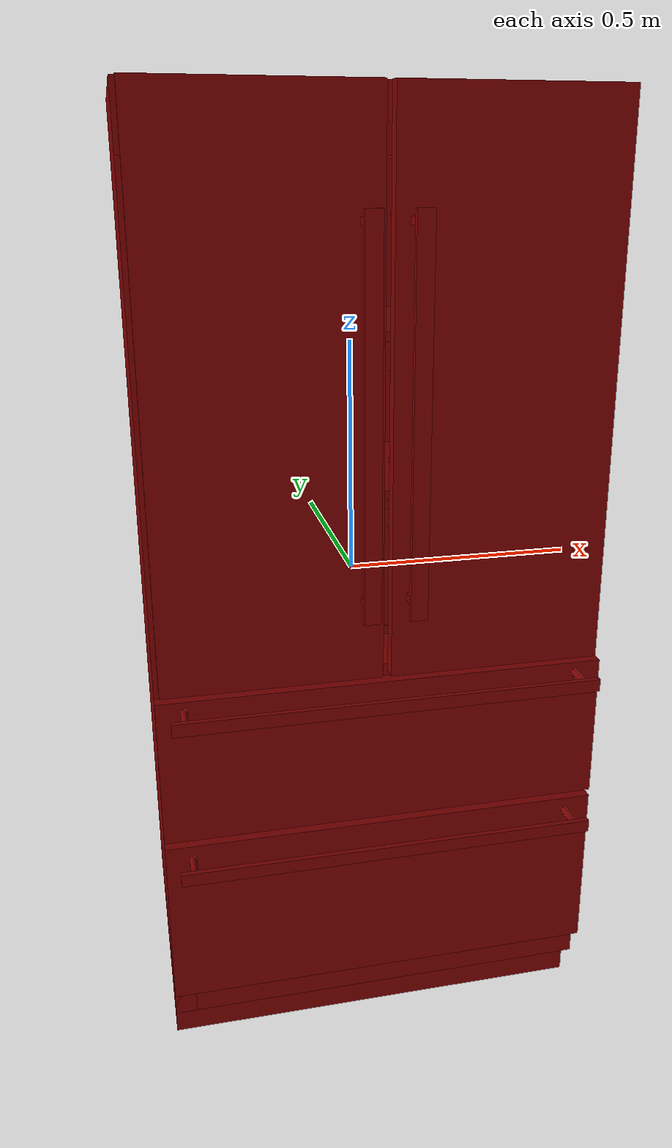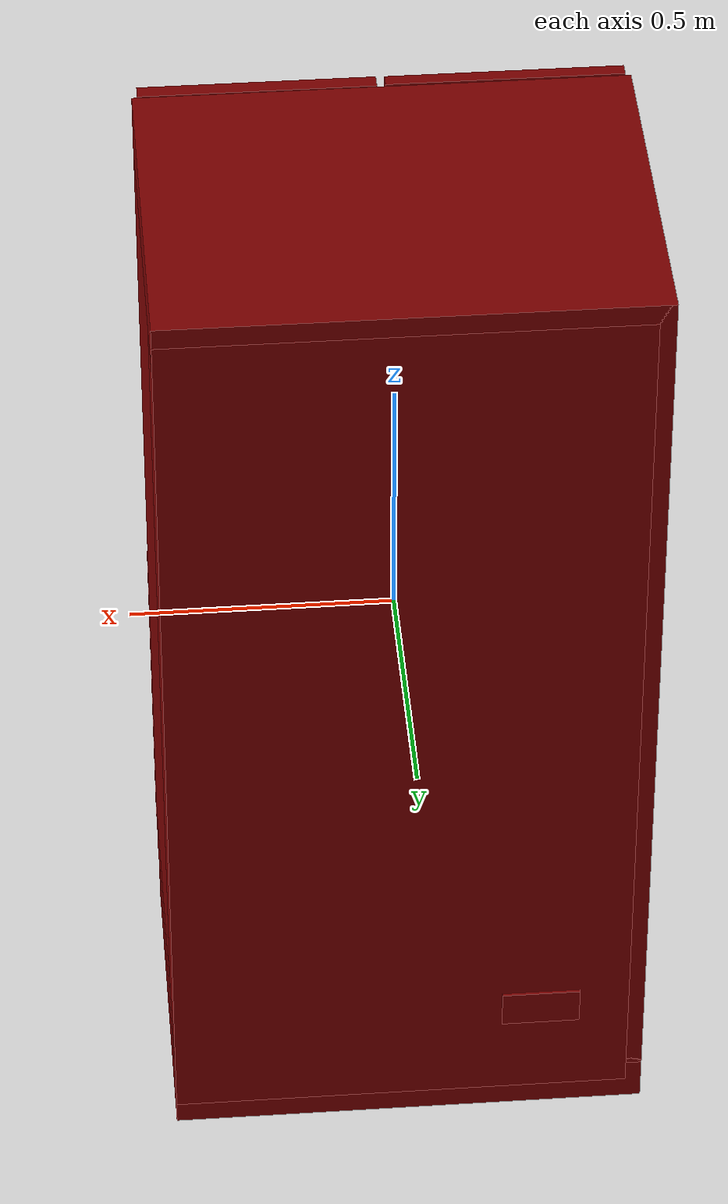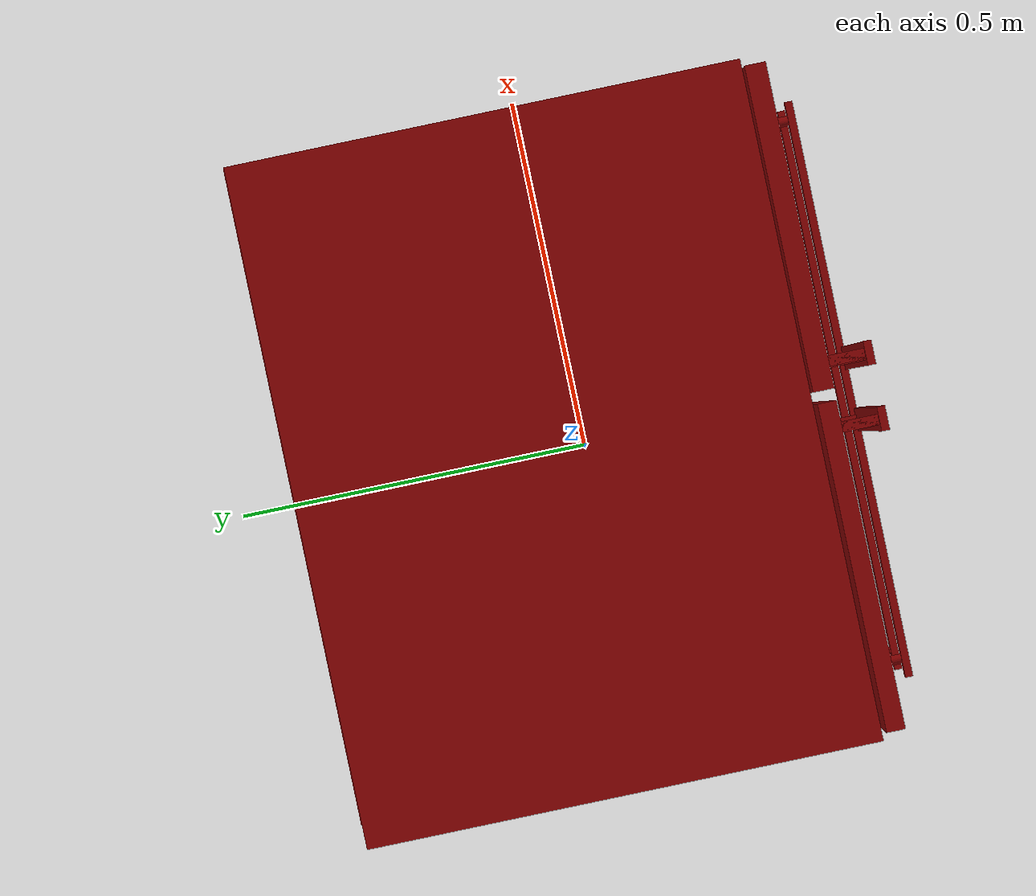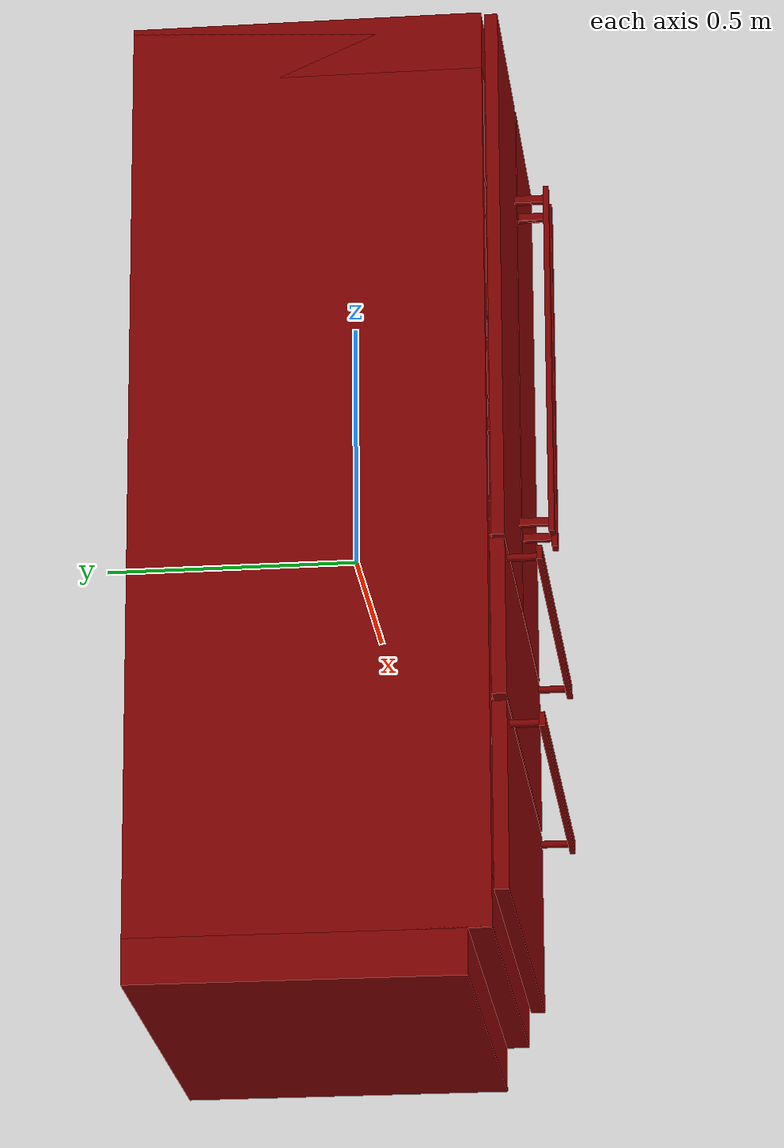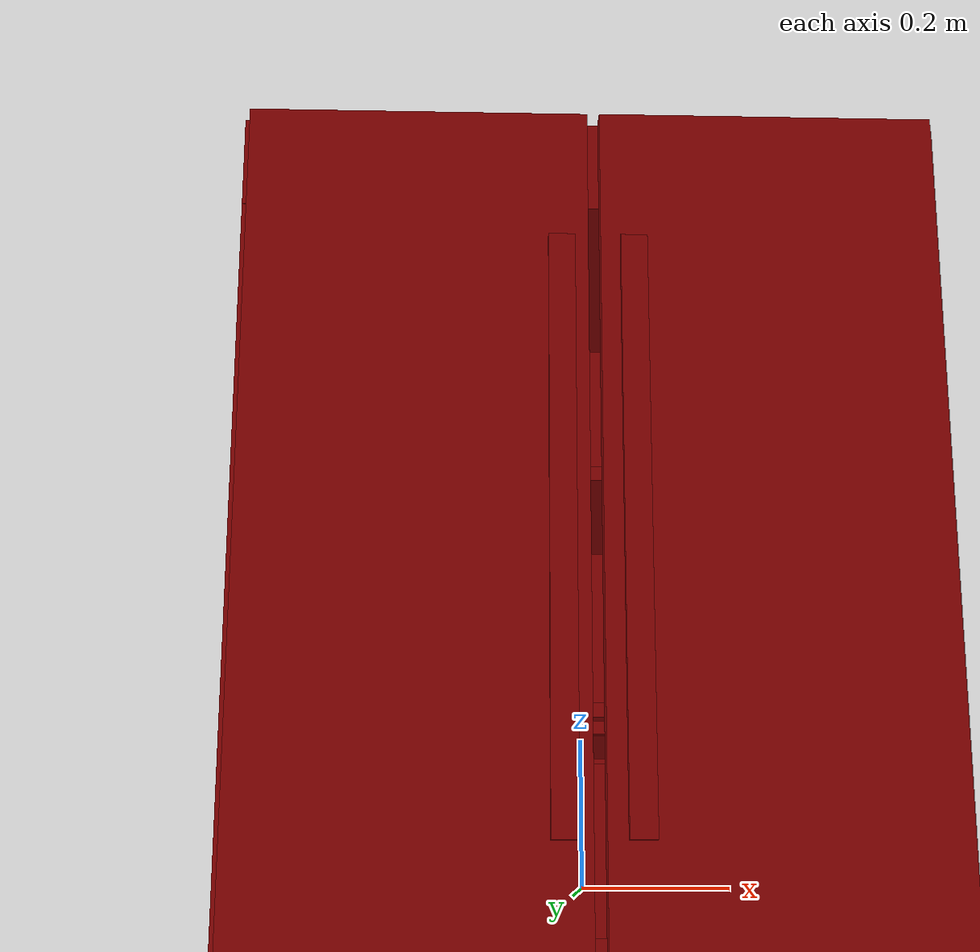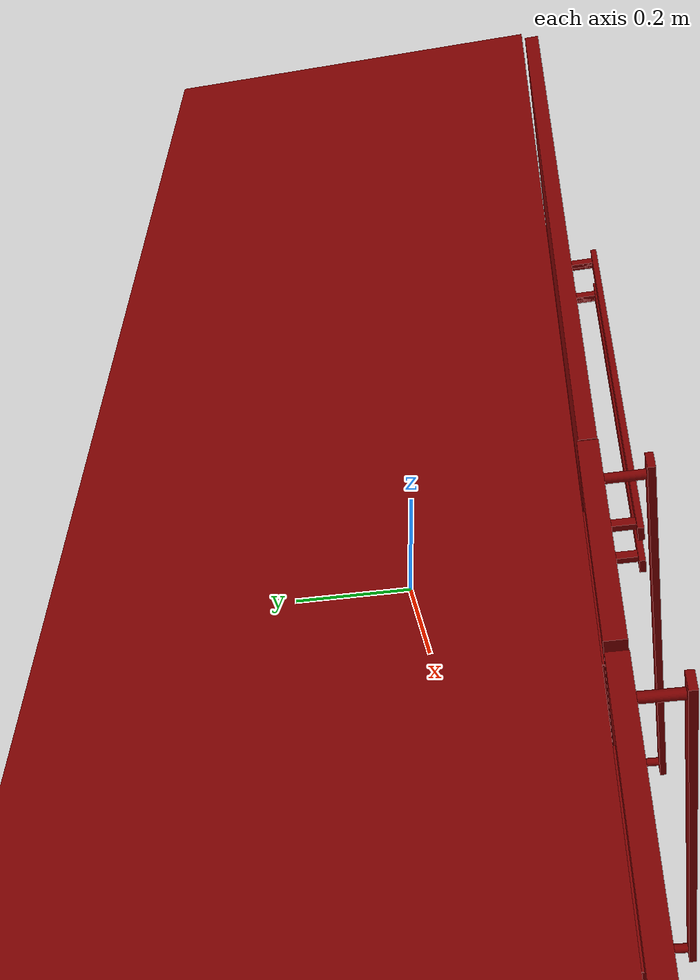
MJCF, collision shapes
<mujoco model="model">
  <compiler angle="radian"/>
  <asset>
    <mesh file="visuals/Body001.obj" name="Body001_vis"/>
    <mesh file="visuals/Body001_Clear.obj" name="Body001_Clear_vis"/>
    <mesh file="visuals/Door001.obj" name="Door001_vis"/>
    <mesh file="visuals/Door001_Clear.obj" name="Door001_Clear_vis"/>
    <mesh file="visuals/Door002.obj" name="Door002_vis"/>
    <mesh file="visuals/Door002_Clear.obj" name="Door002_Clear_vis"/>
    <mesh file="visuals/Drawer001.obj" name="Drawer001_vis"/>
    <mesh file="visuals/Drawer002.obj" name="Drawer002_vis"/>
    <mesh file="visuals/Drawer003.obj" name="Drawer003_vis"/>
    <texture file="visuals/T_BC001.png" name="Body001_material" type="2d"/>
    <material name="Body001_material" rgba="1 1 1 1.0" texture="Body001_material" shininess="0.141421377658844" specular="1"/>
    <texture file="visuals/T_BC001.png" name="Body001_Clear_material" type="2d"/>
    <material name="Body001_Clear_material" rgba="1 1 1 0.75" texture="Body001_Clear_material" shininess="0.141421377658844" specular="0.3103448502657381"/>
    <texture file="visuals/T_BC001.png" name="Door001_material" type="2d"/>
    <material name="Door001_material" rgba="1 1 1 1.0" texture="Door001_material" shininess="0.141421377658844" specular="1"/>
    <texture file="visuals/T_BC001.png" name="Door001_Clear_material" type="2d"/>
    <material name="Door001_Clear_material" rgba="1 1 1 0.75" texture="Door001_Clear_material" shininess="0.141421377658844" specular="0.3103448502657381"/>
    <texture file="visuals/T_BC001.png" name="Door002_material" type="2d"/>
    <material name="Door002_material" rgba="1 1 1 1.0" texture="Door002_material" shininess="0.141421377658844" specular="1"/>
    <texture file="visuals/T_BC001.png" name="Door002_Clear_material" type="2d"/>
    <material name="Door002_Clear_material" rgba="1 1 1 0.75" texture="Door002_Clear_material" shininess="0.141421377658844" specular="0.3103448502657381"/>
    <texture file="visuals/T_BC001.png" name="Drawer001_material" type="2d"/>
    <material name="Drawer001_material" rgba="1 1 1 1.0" texture="Drawer001_material" shininess="0.141421377658844" specular="1"/>
    <texture file="visuals/T_BC001.png" name="Drawer002_material" type="2d"/>
    <material name="Drawer002_material" rgba="1 1 1 1.0" texture="Drawer002_material" shininess="0.141421377658844" specular="1"/>
    <texture file="visuals/T_BC001.png" name="Drawer003_material" type="2d"/>
    <material name="Drawer003_material" rgba="1 1 1 1.0" texture="Drawer003_material" shininess="0.141421377658844" specular="0.3103448502657381"/>
  </asset>
  <default>
    <default class="visual">
      <geom conaffinity="0" contype="0" group="1" type="mesh"/>
    </default>
    <default class="collision">
      <geom group="0" rgba="0.5 0 0 0.5"/>
    </default>
    <default class="spawn">
      <geom group="0" rgba="1 1 1 0.5" contype="0" conaffinity="0"/>
      <site group="0" rgba="1 1 1 0.5"/>
    </default>
    <default class="region">
      <geom group="1" conaffinity="0" contype="0" rgba="0 1 0 0"/>
    </default>
  </default>
  <worldbody>
    <body>
      <body name="object">
        <geom mesh="Body001_vis" type="mesh" solimp="0.998 0.998 0.001" solref="0.001 1" density="100" friction="0.95 0.3 0.1" class="visual" material="Body001_material"/>
        <geom class="collision" type="box" pos="-0.000005 0.068665 -0.927114" size="0.45515915751457214 0.3218735456466675 0.04788755625486374" quat="1.0 0.0 0.0 0.0"/>
        <geom class="collision" type="box" pos="-0.000005 0.045974 -0.834665" size="0.45515915751457214 0.3445645868778229 0.05128537118434906" quat="1.0 0.0 0.0 0.0"/>
        <geom class="collision" type="box" pos="-0.403967 0.053110 -0.493189" size="0.020160051062703133 0.3253287374973297 0.32952433824539185" quat="1.0 0.0 0.0 0.0"/>
        <geom class="collision" type="box" pos="0.432660 0.045974 0.044527" size="0.022493960335850716 0.3445645868778229 0.9304711818695068" quat="1.0 0.0 0.0 0.0"/>
        <geom class="collision" type="box" pos="0.401674 0.057716 -0.493189" size="0.020160051062703133 0.3299352526664734 0.3295243978500366" quat="1.0 0.0 0.0 0.0"/>
        <geom class="collision" type="box" pos="0.003392 0.044371 -0.140254" size="0.43552544713020325 0.34082457423210144 0.03765583783388138" quat="1.0 0.0 0.0 0.0"/>
        <geom class="collision" type="box" pos="-0.432532 0.045974 0.044527" size="0.022632241249084473 0.3445645868778229 0.9304713606834412" quat="1.0 0.0 0.0 0.0"/>
        <geom class="collision" type="box" pos="0.015444 0.307781 0.004242" size="0.4397101402282715 0.08502551913261414 0.9322079420089722" quat="1.0 0.0 0.0 0.0"/>
        <geom class="collision" type="box" pos="-0.253430 0.384690 -0.711989" size="0.07493511587381363 0.014434628188610077 0.038048386573791504" quat="1.0 0.0 0.0 0.0"/>
        <geom class="collision" type="box" pos="0.363598 -0.009333 -0.427460" size="0.028669632971286774 0.24467833340168 0.007983033545315266" quat="1.0 0.0 0.0 0.0"/>
        <geom class="collision" type="box" pos="-0.362925 -0.009333 -0.427460" size="0.028669632971286774 0.24467833340168 0.007983031682670116" quat="1.0 0.0 0.0 0.0"/>
        <geom class="collision" type="box" pos="0.409630 -0.016022 0.202741" size="0.004460358526557684 0.25136658549308777 0.0040595680475234985" quat="1.0 0.0 0.0 0.0"/>
        <geom class="collision" type="box" pos="0.409630 -0.016022 0.237424" size="0.004460358526557684 0.25136658549308777 0.004059567581862211" quat="1.0 0.0 0.0 0.0"/>
        <geom class="collision" type="box" pos="0.409630 -0.016022 0.277636" size="0.004460358526557684 0.25136658549308777 0.004059567116200924" quat="1.0 0.0 0.0 0.0"/>
        <geom class="collision" type="box" pos="0.409630 -0.016022 0.316653" size="0.004460358526557684 0.25136658549308777 0.004059566184878349" quat="1.0 0.0 0.0 0.0"/>
        <geom class="collision" type="box" pos="0.409630 -0.016022 0.355704" size="0.004460358526557684 0.25136658549308777 0.004059565719217062" quat="1.0 0.0 0.0 0.0"/>
        <geom class="collision" type="box" pos="0.409630 -0.016022 0.395866" size="0.004460358526557684 0.25136658549308777 0.004059565253555775" quat="1.0 0.0 0.0 0.0"/>
        <geom class="collision" type="box" pos="0.409630 -0.016022 0.436354" size="0.004460358526557684 0.25136658549308777 0.0040595643222332" quat="1.0 0.0 0.0 0.0"/>
        <geom class="collision" type="box" pos="0.409630 -0.016022 0.476987" size="0.004460358526557684 0.25136658549308777 0.004059563856571913" quat="1.0 0.0 0.0 0.0"/>
        <geom class="collision" type="box" pos="0.409630 -0.016022 0.517150" size="0.004460358526557684 0.25136658549308777 0.0040595633909106255" quat="1.0 0.0 0.0 0.0"/>
        <geom class="collision" type="box" pos="0.409630 -0.016022 0.558769" size="0.004460358526557684 0.25136658549308777 0.004059562459588051" quat="1.0 0.0 0.0 0.0"/>
        <geom class="collision" type="box" pos="0.409630 -0.016022 0.600472" size="0.004460358526557684 0.25136658549308777 0.0040595619939267635" quat="1.0 0.0 0.0 0.0"/>
        <geom class="collision" type="box" pos="0.409630 -0.016022 0.640605" size="0.004460358526557684 0.25136658549308777 0.004059561062604189" quat="1.0 0.0 0.0 0.0"/>
        <geom class="collision" type="box" pos="-0.409447 -0.016022 0.202741" size="0.004460358526557684 0.25136658549308777 0.004059560596942902" quat="1.0 0.0 0.0 0.0"/>
        <geom class="collision" type="box" pos="-0.409447 -0.016022 0.237424" size="0.004460358526557684 0.25136658549308777 0.004059560131281614" quat="1.0 0.0 0.0 0.0"/>
        <geom class="collision" type="box" pos="-0.409447 -0.016022 0.277636" size="0.004460358526557684 0.25136658549308777 0.00405955919995904" quat="1.0 0.0 0.0 0.0"/>
        <geom class="collision" type="box" pos="-0.409447 -0.016022 0.316653" size="0.004460358526557684 0.25136658549308777 0.004059558734297752" quat="1.0 0.0 0.0 0.0"/>
        <geom class="collision" type="box" pos="-0.409447 -0.016022 0.355704" size="0.004460358526557684 0.25136658549308777 0.004059558268636465" quat="1.0 0.0 0.0 0.0"/>
        <geom class="collision" type="box" pos="-0.409447 -0.016022 0.395866" size="0.004460358526557684 0.25136658549308777 0.0040595573373138905" quat="1.0 0.0 0.0 0.0"/>
        <geom class="collision" type="box" pos="-0.409447 -0.016022 0.436354" size="0.004460358526557684 0.25136658549308777 0.004059556871652603" quat="1.0 0.0 0.0 0.0"/>
        <geom class="collision" type="box" pos="-0.409447 -0.016022 0.476987" size="0.004460358526557684 0.25136658549308777 0.004059556405991316" quat="1.0 0.0 0.0 0.0"/>
        <geom class="collision" type="box" pos="-0.409447 -0.016022 0.517150" size="0.004460358526557684 0.25136658549308777 0.004059555474668741" quat="1.0 0.0 0.0 0.0"/>
        <geom class="collision" type="box" pos="-0.409447 -0.016022 0.558769" size="0.004460358526557684 0.25136658549308777 0.004059555009007454" quat="1.0 0.0 0.0 0.0"/>
        <geom class="collision" type="box" pos="-0.409447 -0.016022 0.600472" size="0.004460358526557684 0.25136658549308777 0.004059554543346167" quat="1.0 0.0 0.0 0.0"/>
        <geom class="collision" type="box" pos="-0.409447 -0.016022 0.640605" size="0.004460358526557684 0.25136658549308777 0.004059553612023592" quat="1.0 0.0 0.0 0.0"/>
        <geom class="collision" type="box" pos="-0.000005 0.045894 0.915329" size="0.45515912771224976 0.344644695520401 0.05966964736580849" quat="1.0 0.0 0.0 0.0"/>
        <geom class="collision" type="box" pos="0.363598 -0.009333 -0.776129" size="0.028669632971286774 0.24467833340168 0.007983033545315266" quat="1.0 0.0 0.0 0.0"/>
        <geom class="collision" type="box" pos="-0.362925 -0.009333 -0.775866" size="0.028669632971286774 0.24467833340168 0.007983031682670116" quat="1.0 0.0 0.0 0.0"/>
        <body name="Body001_Clear">
          <geom mesh="Body001_Clear_vis" type="mesh" solimp="0.998 0.998 0.001" solref="0.001 1" density="100" friction="0.95 0.3 0.1" class="visual" material="Body001_Clear_material"/>
          <geom class="collision" type="box" pos="0.000663 0.030538 0.214005" size="0.41955575346946716 0.20902882516384125 0.009429198689758778" quat="1.0 0.0 0.0 0.0"/>
          <geom class="collision" type="box" pos="0.000663 0.030538 0.530805" size="0.41955575346946716 0.20902882516384125 0.009429200552403927" quat="1.0 0.0 0.0 0.0"/>
        </body>
        <body name="Door001">
          <joint axis="0.0 0.0 -1.0" pos="-0.439572 -0.314728 0.427586" limited="true" name="Door001_joint" range="0.0 1.5707963267948966" type="hinge" damping="1" frictionloss="1" armature=".01" stiffness="0.05"/>
          <geom mesh="Door001_vis" type="mesh" solimp="0.998 0.998 0.001" solref="0.001 1" density="100" friction="0.95 0.3 0.1" class="visual" material="Door001_material"/>
          <geom class="collision" type="box" pos="-0.226339 -0.317476 0.430274" size="0.21931464970111847 0.012669520452618599 0.544724702835083" quat="1.0 0.0 0.0 0.0"/>
          <geom class="collision" type="box" pos="-0.044701 -0.394165 0.402047" size="0.016507267951965332 0.005618056282401085 0.37140971422195435" quat="1.0 0.0 0.0 0.0"/>
          <geom class="collision" type="box" pos="-0.044741 -0.360565 0.750640" size="0.0072952997870743275 0.0072952997870743275 0.03156762197613716" quat="0.7071067094802856 0.7071068286895752 0.0 0.0"/>
          <geom class="collision" type="box" pos="-0.044825 -0.360565 0.750640" size="0.0072952997870743275 0.0072952997870743275 0.03156762197613716" quat="0.7071067094802856 0.7071068286895752 0.0 0.0"/>
          <geom class="collision" type="box" pos="-0.044935 -0.360565 0.054178" size="0.0072952997870743275 0.007295301649719477 0.03156762197613716" quat="0.7071067094802856 0.7071068286895752 0.0 0.0"/>
          <geom class="collision" type="box" pos="-0.219829 -0.185565 0.761552" size="0.1722746342420578 0.004940989892929792 0.019982893019914627" quat="1.0 0.0 0.0 0.0"/>
          <geom class="collision" type="box" pos="-0.046747 -0.224357 0.761558" size="0.009039727970957756 0.03427697345614433 0.019487781450152397" quat="0.9945219159126282 0.0 0.0 0.10452846437692642"/>
          <geom class="collision" type="box" pos="-0.041466 -0.249204 0.790547" size="0.009039727039635181 0.009492472745478153 0.011506680399179459" quat="0.9945219159126282 0.0 0.0 0.10452846437692642"/>
          <geom class="collision" type="box" pos="-0.045630 -0.229611 0.788532" size="0.009039727039635181 0.010747063905000687 0.009492485783994198" quat="0.9945219159126282 0.0 0.0 0.10452846437692642"/>
          <geom class="collision" type="box" pos="-0.050076 -0.208696 0.784258" size="0.009039727039635181 0.01101016066968441 0.005218466743826866" quat="0.9945219159126282 0.0 0.0 0.10452846437692642"/>
          <geom class="collision" type="box" pos="-0.053996 -0.201513 0.799404" size="0.0024133336264640093 0.002413333859294653 0.01875714398920536" quat="0.7049269676208496 0.7049270272254944 0.05547899752855301 0.05547899752855301"/>
          <geom class="collision" type="box" pos="-0.221147 -0.185580 0.799404" size="0.002413333160802722 0.002413333859294653 0.16833283007144928" quat="0.4999999701976776 0.5 0.5 0.5"/>
          <geom class="collision" type="box" pos="-0.399477 -0.202292 0.799494" size="0.002413333859294653 0.002413333859294653 0.01649571768939495" quat="0.7032331824302673 0.7032331824302673 -0.07391279190778732 -0.07391278445720673"/>
          <geom class="collision" type="box" pos="-0.401953 -0.218294 0.793300" size="0.0024133340921252966 0.0024133340921252966 0.004603476729243994" quat="0.12120170891284943 0.9871088862419128 -0.10374932736158371 -0.012738813646137714"/>
          <geom class="collision" type="box" pos="-0.050981 -0.218294 0.793330" size="0.0024133340921252966 0.002413333859294653 0.004603412002325058" quat="0.12814365327358246 0.9838157296180725 -0.11195120215415955 0.056149452924728394"/>
          <geom class="collision" type="box" pos="-0.219829 -0.185565 0.469288" size="0.1722746342420578 0.004940989892929792 0.019982893019914627" quat="1.0 0.0 0.0 0.0"/>
          <geom class="collision" type="box" pos="-0.047512 -0.224357 0.469294" size="0.009039727970957756 0.03427697345614433 0.019487781450152397" quat="0.9945219159126282 0.0 0.0 0.10452846437692642"/>
          <geom class="collision" type="box" pos="-0.042528 -0.249204 0.498283" size="0.009039727039635181 0.009492472745478153 0.011506680399179459" quat="0.9945219159126282 0.0 0.0 0.10452846437692642"/>
          <geom class="collision" type="box" pos="-0.045630 -0.229611 0.496269" size="0.009039727039635181 0.010747063905000687 0.009492485783994198" quat="0.9945219159126282 0.0 0.0 0.10452846437692642"/>
          <geom class="collision" type="box" pos="-0.050076 -0.208696 0.491995" size="0.009039727039635181 0.01101016066968441 0.005218499340116978" quat="0.9945219159126282 0.0 0.0 0.10452846437692642"/>
          <geom class="collision" type="box" pos="-0.053996 -0.201513 0.507140" size="0.0024133336264640093 0.002413333859294653 0.01875714398920536" quat="0.7049269676208496 0.7049270272254944 0.05547899752855301 0.05547899752855301"/>
          <geom class="collision" type="box" pos="-0.225016 -0.185580 0.507140" size="0.002413333160802722 0.002413333859294653 0.16986234486103058" quat="0.4999999701976776 0.5 0.5 0.5"/>
          <geom class="collision" type="box" pos="-0.399477 -0.202292 0.507230" size="0.002413333859294653 0.002413333859294653 0.01649571768939495" quat="0.7032331824302673 0.7032331824302673 -0.07391279190778732 -0.07391278445720673"/>
          <geom class="collision" type="box" pos="-0.401953 -0.218294 0.501036" size="0.0024133340921252966 0.0024133340921252966 0.004603444132953882" quat="0.12120170891284943 0.9871088862419128 -0.10374932736158371 -0.012738813646137714"/>
          <geom class="collision" type="box" pos="-0.050981 -0.218294 0.501066" size="0.0024133340921252966 0.002413333859294653 0.004603444132953882" quat="0.12814365327358246 0.9838157296180725 -0.11195120215415955 0.056149452924728394"/>
          <geom class="collision" type="box" pos="-0.219829 -0.185565 0.295715" size="0.1722746342420578 0.004940989892929792 0.018948551267385483" quat="1.0 0.0 0.0 0.0"/>
          <geom class="collision" type="box" pos="-0.046747 -0.224357 0.295720" size="0.009039727970957756 0.03427697345614433 0.018453411757946014" quat="0.9945219159126282 0.0 0.0 0.10452846437692642"/>
          <geom class="collision" type="box" pos="-0.041466 -0.249204 0.322198" size="0.009039727039635181 0.009492472745478153 0.011506680399179459" quat="0.9945219159126282 0.0 0.0 0.10452846437692642"/>
          <geom class="collision" type="box" pos="-0.045630 -0.229611 0.321661" size="0.009039727039635181 0.010747063905000687 0.009492485783994198" quat="0.9945219159126282 0.0 0.0 0.10452846437692642"/>
          <geom class="collision" type="box" pos="-0.050076 -0.208696 0.317387" size="0.009039727039635181 0.01101016066968441 0.005218483041971922" quat="0.9945219159126282 0.0 0.0 0.10452846437692642"/>
          <geom class="collision" type="box" pos="-0.053996 -0.201513 0.332532" size="0.0024133336264640093 0.002413333859294653 0.01875714398920536" quat="0.7049269676208496 0.7049270272254944 0.05547899752855301 0.05547899752855301"/>
          <geom class="collision" type="box" pos="-0.226238 -0.185580 0.332532" size="0.002413333160802722 0.002413333859294653 0.16833283007144928" quat="0.4999999701976776 0.5 0.5 0.5"/>
          <geom class="collision" type="box" pos="-0.399477 -0.200174 0.332622" size="0.002413333859294653 0.002413333859294653 0.01649571768939495" quat="0.7032331824302673 0.7032331824302673 -0.07391279190778732 -0.07391278445720673"/>
          <geom class="collision" type="box" pos="-0.401953 -0.218294 0.326428" size="0.0024133340921252966 0.0024133340921252966 0.004603444132953882" quat="0.12120170891284943 0.9871088862419128 -0.10374932736158371 -0.012738813646137714"/>
          <geom class="collision" type="box" pos="-0.050981 -0.218294 0.326458" size="0.0024133340921252966 0.002413333859294653 0.004603444132953882" quat="0.12814365327358246 0.9838157296180725 -0.11195120215415955 0.056149452924728394"/>
          <geom class="collision" type="box" pos="-0.054888 -0.194823 0.324504" size="0.0024133333936333656 0.002413333859294653 0.011471705511212349" quat="0.7049269676208496 0.7049270272254944 0.05547899752855301 0.05547899752855301"/>
          <geom class="collision" type="box" pos="-0.226453 -0.185791 0.324504" size="0.002413333160802722 0.002413333859294653 0.16833283007144928" quat="0.4999999701976776 0.5 0.5 0.5"/>
          <geom class="collision" type="box" pos="-0.397720 -0.193441 0.324594" size="0.0024133336264640093 0.002413333859294653 0.009272079914808273" quat="0.7032331824302673 0.7032331824302673 -0.07391279190778732 -0.07391278445720673"/>
          <geom class="collision" type="box" pos="-0.399578 -0.206087 0.319929" size="0.0024133343249559402 0.0024133336264640093 0.005534749943763018" quat="0.290770024061203 0.9510660171508789 -0.0999610498547554 -0.030561132356524467"/>
          <geom class="collision" type="box" pos="-0.053456 -0.205618 0.318430" size="0.0024133340921252966 0.002413333859294653 0.004603444132953882" quat="0.12814365327358246 0.9838157296180725 -0.11195120215415955 0.056149452924728394"/>
          <body name="Door001_Clear">
            <geom mesh="Door001_Clear_vis" type="mesh" solimp="0.998 0.998 0.001" solref="0.001 1" density="100" friction="0.95 0.3 0.1" class="visual" material="Door001_Clear_material"/>
            <geom class="collision" type="box" pos="-0.206038 -0.230042 0.755649" size="0.16827824711799622 0.04765574634075165 0.004487974103540182" quat="1.0 0.0 0.0 0.0"/>
            <geom class="collision" type="box" pos="-0.206038 -0.230042 0.462008" size="0.16827824711799622 0.04765574634075165 0.004488012287765741" quat="1.0 0.0 0.0 0.0"/>
            <geom class="collision" type="box" pos="-0.220083 -0.230042 0.290024" size="0.18232300877571106 0.04765574634075165 0.004487993661314249" quat="1.0 0.0 0.0 0.0"/>
          </body>
        </body>
        <body name="Door002">
          <joint axis="0.0 0.0 1.0" pos="0.438879 -0.315547 0.427586" limited="true" name="Door002_joint" range="0.0 1.5707963267948966" type="hinge" damping="1" frictionloss="1" armature=".01" stiffness="0.05"/>
          <geom mesh="Door002_vis" type="mesh" solimp="0.998 0.998 0.001" solref="0.001 1" density="100" friction="0.95 0.3 0.1" class="visual" material="Door002_material"/>
          <geom class="collision" type="box" pos="0.041809 -0.247406 0.790547" size="0.009039727039635181 0.009492472745478153 0.011506680399179459" quat="0.9902509450912476 0.0 -0.0 -0.13929469883441925"/>
          <geom class="collision" type="box" pos="0.048817 -0.222990 0.761558" size="0.009039727970957756 0.03427696228027344 0.019487781450152397" quat="0.9902509450912476 0.0 -0.0 -0.13929469883441925"/>
          <geom class="collision" type="box" pos="0.224514 -0.187100 0.761552" size="0.17259478569030762 0.004940989892929792 0.019982893019914627" quat="1.0 0.0 0.0 0.0"/>
          <geom class="collision" type="box" pos="0.045190 -0.360657 0.054178" size="0.0072952997870743275 0.007295301649719477 0.03156762197613716" quat="0.7071067094802856 0.7071068286895752 0.0 0.0"/>
          <geom class="collision" type="box" pos="0.045246 -0.360657 0.750640" size="0.0072952997870743275 0.0072952997870743275 0.03156762197613716" quat="0.7071067094802856 0.7071068286895752 0.0 0.0"/>
          <geom class="collision" type="box" pos="0.391207 -0.207154 0.318430" size="0.0024133340921252966 0.002413333859294653 0.004603444132953882" quat="0.12814365327358246 0.9838157296180725 -0.11195120215415955 0.056149452924728394"/>
          <geom class="collision" type="box" pos="0.053927 -0.207623 0.319929" size="0.0024133343249559402 0.0024133336264640093 0.005534749943763018" quat="0.290770024061203 0.9510660171508789 -0.0999610498547554 -0.030561132356524467"/>
          <geom class="collision" type="box" pos="0.055785 -0.194977 0.324594" size="0.0024133336264640093 0.002413333859294653 0.009272079914808273" quat="0.7032331824302673 0.7032331824302673 -0.07391279190778732 -0.07391278445720673"/>
          <geom class="collision" type="box" pos="0.043499 -0.360657 0.750640" size="0.0072952997870743275 0.0072952997870743275 0.03156762197613716" quat="0.7071067094802856 0.7071068286895752 0.0 0.0"/>
          <geom class="collision" type="box" pos="0.223197 -0.187327 0.324504" size="0.002413333160802722 0.002413333859294653 0.1686529964208603" quat="0.4999999701976776 0.5 0.5 0.5"/>
          <geom class="collision" type="box" pos="0.389776 -0.196358 0.324504" size="0.0024133336264640093 0.002413333859294653 0.011471705511212349" quat="0.7049269676208496 0.7049270272254944 0.05547899752855301 0.05547899752855301"/>
          <geom class="collision" type="box" pos="0.393161 -0.219830 0.326458" size="0.0024133340921252966 0.002413333859294653 0.004603444132953882" quat="0.12814365327358246 0.9838157296180725 -0.11195120215415955 0.056149452924728394"/>
          <geom class="collision" type="box" pos="0.051552 -0.219830 0.326428" size="0.0024133340921252966 0.0024133340921252966 0.004603444132953882" quat="0.12120170891284943 0.9871088862419128 -0.10374932736158371 -0.012738813646137714"/>
          <geom class="collision" type="box" pos="0.054028 -0.203827 0.332622" size="0.002413333859294653 0.002413333859294653 0.01649571768939495" quat="0.7032331824302673 0.7032331824302673 -0.07391279190778732 -0.07391278445720673"/>
          <geom class="collision" type="box" pos="0.223197 -0.187115 0.332532" size="0.002413333160802722 0.002413333859294653 0.1686529964208603" quat="0.4999999701976776 0.5 0.5 0.5"/>
          <geom class="collision" type="box" pos="0.390668 -0.203049 0.332532" size="0.002413333859294653 0.002413333859294653 0.01875714398920536" quat="0.7049269676208496 0.7049270272254944 0.05547899752855301 0.05547899752855301"/>
          <geom class="collision" type="box" pos="0.054239 -0.205416 0.317387" size="0.009039727039635181 0.01101016066968441 0.005218483041971922" quat="0.987896203994751 0.0 -0.0 -0.1551164835691452"/>
          <geom class="collision" type="box" pos="0.047686 -0.225770 0.321661" size="0.009039727039635181 0.010747063905000687 0.009492485783994198" quat="0.987896203994751 0.0 -0.0 -0.1551164835691452"/>
          <geom class="collision" type="box" pos="0.041547 -0.244837 0.322198" size="0.009039727039635181 0.009492472745478153 0.011506680399179459" quat="0.987896203994751 0.0 -0.0 -0.1551164835691452"/>
          <geom class="collision" type="box" pos="0.044873 -0.394257 0.402047" size="0.016507266089320183 0.005618056282401085 0.3714100122451782" quat="1.0 0.0 0.0 0.0"/>
          <geom class="collision" type="box" pos="0.049332 -0.220657 0.295720" size="0.009039727970957756 0.03427697345614433 0.018453411757946014" quat="0.987896203994751 0.0 -0.0 -0.1551164835691452"/>
          <geom class="collision" type="box" pos="0.223889 -0.187100 0.295715" size="0.17196966707706451 0.004940989892929792 0.018948551267385483" quat="1.0 0.0 0.0 0.0"/>
          <geom class="collision" type="box" pos="0.393099 -0.219830 0.501066" size="0.0024133343249559402 0.002413333859294653 0.004603444132953882" quat="0.12814365327358246 0.9838157296180725 -0.11195120215415955 0.056149452924728394"/>
          <geom class="collision" type="box" pos="0.049421 -0.219830 0.501036" size="0.0024133340921252966 0.0024133340921252966 0.004603444132953882" quat="0.12120170891284943 0.9871088862419128 -0.10374932736158371 -0.012738813646137714"/>
          <geom class="collision" type="box" pos="0.054281 -0.203827 0.507230" size="0.002413333859294653 0.002413333859294653 0.01649571768939495" quat="0.7032331824302673 0.7032331824302673 -0.07391279190778732 -0.07391278445720673"/>
          <geom class="collision" type="box" pos="0.223197 -0.187115 0.507140" size="0.002413333160802722 0.0024133340921252966 0.1686529964208603" quat="0.4999999701976776 0.5 0.5 0.5"/>
          <geom class="collision" type="box" pos="0.390668 -0.203049 0.507140" size="0.002413333859294653 0.002413333859294653 0.01875714398920536" quat="0.7049269676208496 0.7049270272254944 0.05547899752855301 0.05547899752855301"/>
          <geom class="collision" type="box" pos="0.053314 -0.207036 0.491995" size="0.009039727039635181 0.011010159738361835 0.005218499340116978" quat="0.9897105693817139 0.0 -0.0 -0.14308391511440277"/>
          <geom class="collision" type="box" pos="0.047258 -0.227542 0.496269" size="0.009039727039635181 0.010747063905000687 0.009492485783994198" quat="0.9897105693817139 0.0 -0.0 -0.14308391511440277"/>
          <geom class="collision" type="box" pos="0.041584 -0.246753 0.498283" size="0.009039727039635181 0.009492472745478153 0.011506680399179459" quat="0.9897105693817139 0.0 -0.0 -0.14308391511440277"/>
          <geom class="collision" type="box" pos="0.048779 -0.222391 0.469294" size="0.009039727970957756 0.03427696228027344 0.019487781450152397" quat="0.9897105693817139 0.0 -0.0 -0.14308391511440277"/>
          <geom class="collision" type="box" pos="0.223394 -0.187100 0.469288" size="0.17147484421730042 0.004940989892929792 0.019982893019914627" quat="1.0 0.0 0.0 0.0"/>
          <geom class="collision" type="box" pos="0.393682 -0.219830 0.793330" size="0.0024133343249559402 0.002413333859294653 0.004603412002325058" quat="0.12814365327358246 0.9838157296180725 -0.11195120215415955 0.056149452924728394"/>
          <geom class="collision" type="box" pos="0.051391 -0.219830 0.793300" size="0.0024133340921252966 0.0024133340921252966 0.004603476729243994" quat="0.12120170891284943 0.9871088862419128 -0.10374932736158371 -0.012738813646137714"/>
          <geom class="collision" type="box" pos="0.053868 -0.203827 0.799494" size="0.002413333859294653 0.002413333859294653 0.01649571768939495" quat="0.7032331824302673 0.7032331824302673 -0.07391279190778732 -0.07391278445720673"/>
          <geom class="collision" type="box" pos="0.223197 -0.187115 0.799404" size="0.002413333160802722 0.0024133340921252966 0.1686529964208603" quat="0.4999999701976776 0.5 0.5 0.5"/>
          <geom class="collision" type="box" pos="0.390668 -0.203049 0.799404" size="0.002413333859294653 0.002413333859294653 0.018757136538624763" quat="0.7049269676208496 0.7049270272254944 0.05547899752855301 0.05547899752855301"/>
          <geom class="collision" type="box" pos="0.053234 -0.207600 0.784258" size="0.009039727039635181 0.01101016066968441 0.005218466743826866" quat="0.9902509450912476 0.0 -0.0 -0.13929469883441925"/>
          <geom class="collision" type="box" pos="0.047335 -0.228152 0.788532" size="0.009039727039635181 0.010747063905000687 0.009492485783994198" quat="0.9902509450912476 0.0 -0.0 -0.13929469883441925"/>
          <geom class="collision" type="box" pos="0.226832 -0.316614 0.430273" size="0.21795526146888733 0.014260842464864254 0.5447251200675964" quat="1.0 0.0 0.0 0.0"/>
          <body name="Door002_Clear">
            <geom mesh="Door002_Clear_vis" type="mesh" solimp="0.998 0.998 0.001" solref="0.001 1" density="100" friction="0.95 0.3 0.1" class="visual" material="Door002_Clear_material"/>
            <geom class="collision" type="box" pos="0.204722 -0.230856 0.755649" size="0.16738037765026093 0.04693411663174629 0.004487978760153055" quat="1.0 0.0 0.0 0.0"/>
            <geom class="collision" type="box" pos="0.204722 -0.230856 0.462008" size="0.16738037765026093 0.04693411663174629 0.004488016944378614" quat="1.0 0.0 0.0 0.0"/>
            <geom class="collision" type="box" pos="0.220813 -0.230856 0.290024" size="0.18347102403640747 0.04693411663174629 0.004488002974539995" quat="1.0 0.0 0.0 0.0"/>
          </body>
        </body>
        <body name="Drawer001">
          <joint axis="0.0 -1.0 0.0" pos="0.000000 -0.101054 -0.628089" limited="true" name="Drawer001_joint" range="0.0 0.4" type="slide" damping="1" frictionloss="1" armature=".01" stiffness="0.05"/>
          <geom mesh="Drawer001_vis" type="mesh" solimp="0.998 0.998 0.001" solref="0.001 1" density="100" friction="0.95 0.3 0.1" class="visual" material="Drawer001_material"/>
          <geom class="collision" type="cylinder" pos="0.400320 -0.360657 -0.478105" size="0.0072952997870743275 0.03156762197613716" quat="0.7071067094802856 0.7071068286895752 0.0 0.0"/>
          <geom class="collision" type="cylinder" pos="-0.400303 -0.360657 -0.478136" size="0.0072952997870743275 0.03156762197613716" quat="0.7071067094802856 0.7071068286895752 0.0 0.0"/>
          <geom class="collision" type="box" pos="-0.000747 -0.394257 -0.478341" size="0.4277200698852539 0.005618114024400711 0.013253261335194111" quat="1.0 0.0 0.0 0.0"/>
          <geom class="collision" type="box" pos="0.000189 -0.316614 -0.631693" size="0.45535269379615784 0.014260848052799702 0.1825096160173416" quat="1.0 0.0 0.0 0.0"/>
          <geom class="collision" type="box" pos="-0.000281 0.189730 -0.645943" size="0.37862294912338257 0.009886136278510094 0.12147173285484314" quat="1.0 0.0 0.0 0.0"/>
          <geom class="collision" type="box" pos="0.374436 -0.062069 -0.645943" size="0.004046059213578701 0.2443414032459259 0.12147174775600433" quat="1.0 0.0 0.0 0.0"/>
          <geom class="collision" type="box" pos="-0.376490 -0.062069 -0.645943" size="0.0043188645504415035 0.2443414032459259 0.12147177010774612" quat="1.0 0.0 0.0 0.0"/>
          <geom class="collision" type="box" pos="-0.000223 -0.060306 -0.764130" size="0.37868162989616394 0.24510401487350464 0.003285554237663746" quat="1.0 0.0 0.0 0.0"/>
        </body>
        <body name="Drawer002">
          <joint axis="0.0 -1.0 0.0" pos="0.000001 -0.101054 -0.282053" limited="true" name="Drawer002_joint" range="0.0 0.4" type="slide" damping="1" frictionloss="1" armature=".01" stiffness="0.05"/>
          <geom mesh="Drawer002_vis" type="mesh" solimp="0.998 0.998 0.001" solref="0.001 1" density="100" friction="0.95 0.3 0.1" class="visual" material="Drawer002_material"/>
          <geom class="collision" type="box" pos="-0.000223 -0.060306 -0.415693" size="0.37868162989616394 0.24510401487350464 0.003285554703325033" quat="1.0 0.0 0.0 0.0"/>
          <geom class="collision" type="box" pos="-0.376490 -0.062069 -0.301555" size="0.0043188645504415035 0.2443414032459259 0.11742346733808517" quat="1.0 0.0 0.0 0.0"/>
          <geom class="collision" type="box" pos="0.374436 -0.062069 -0.301555" size="0.004046059213578701 0.2443414032459259 0.11742347478866577" quat="1.0 0.0 0.0 0.0"/>
          <geom class="collision" type="box" pos="-0.000281 0.189730 -0.301555" size="0.37862294912338257 0.009886136278510094 0.11742348968982697" quat="1.0 0.0 0.0 0.0"/>
          <geom class="collision" type="box" pos="0.000189 -0.316614 -0.279990" size="0.45535269379615784 0.014260849915444851 0.15482425689697266" quat="1.0 0.0 0.0 0.0"/>
          <geom class="collision" type="box" pos="-0.000747 -0.394257 -0.147801" size="0.4277200698852539 0.005618114024400711 0.013253273442387581" quat="1.0 0.0 0.0 0.0"/>
          <geom class="collision" type="cylinder" pos="-0.400303 -0.360657 -0.147596" size="0.0072952997870743275 0.03156762197613716" quat="0.7071067094802856 0.7071068286895752 0.0 0.0"/>
          <geom class="collision" type="cylinder" pos="0.400320 -0.360657 -0.147565" size="0.0072952997870743275 0.03156762197613716" quat="0.7071067094802856 0.7071068286895752 0.0 0.0"/>
        </body>
        <body name="Drawer003">
          <joint axis="0.0 -1.0 0.0" pos="0.000001 0.022635 0.178775" limited="true" name="Drawer003_joint" range="0.0 0.4" type="slide" damping="1" frictionloss="1" armature=".01" stiffness="0.05"/>
          <geom mesh="Drawer003_vis" type="mesh" solimp="0.998 0.998 0.001" solref="0.001 1" density="100" friction="0.95 0.3 0.1" class="visual" material="Drawer003_material"/>
          <geom class="collision" type="box" pos="-0.000192 0.009388 -0.081357" size="0.40382930636405945 0.18678787350654602 0.009429222904145718" quat="1.0 0.0 0.0 0.0"/>
          <geom class="collision" type="box" pos="0.397106 0.016814 0.057152" size="0.006797879468649626 0.19421342015266418 0.14544916152954102" quat="1.0 0.0 0.0 0.0"/>
          <geom class="collision" type="box" pos="-0.396309 0.016814 0.057152" size="0.006797879468649626 0.19421342015266418 0.14544916152954102" quat="1.0 0.0 0.0 0.0"/>
          <geom class="collision" type="box" pos="-0.000192 0.203605 0.055333" size="0.40382930636405945 0.01000561099499464 0.14544369280338287" quat="1.0 0.0 0.0 0.0"/>
          <geom class="collision" type="box" pos="-0.272586 -0.168741 0.055333" size="0.1314360797405243 0.005322454497218132 0.14544369280338287" quat="1.0 0.0 0.0 0.0"/>
          <geom class="collision" type="box" pos="0.264807 -0.168741 0.055333" size="0.13269929587841034 0.005322454497218132 0.14544370770454407" quat="1.0 0.0 0.0 0.0"/>
          <geom class="collision" type="box" pos="-0.004795 -0.168741 0.027584" size="0.1388266235589981 0.005322454497218132 0.11769518256187439" quat="1.0 0.0 0.0 0.0"/>
          <geom class="collision" type="box" pos="-0.004795 -0.168741 0.192095" size="0.1388266235589981 0.005322454497218132 0.008587490767240524" quat="1.0 0.0 0.0 0.0"/>
        </body>
        <geom class="region" name="reg_main" type="box" pos="-5.0000000000050004e-06 0.034125000000000016 -1.4999999999876223e-06" size="0.455159 0.365 0.9749995"/>
      </body>
    </body>
  </worldbody>
  <actuator>
    <motor name="Door001_joint_actuator" joint="Door001_joint" gear="50"/>
    <motor name="Door002_joint_actuator" joint="Door002_joint" gear="50"/>
    <motor name="Drawer001_joint_actuator" joint="Drawer001_joint" gear="50"/>
    <motor name="Drawer002_joint_actuator" joint="Drawer002_joint" gear="50"/>
    <motor name="Drawer003_joint_actuator" joint="Drawer003_joint" gear="50"/>
  </actuator>
</mujoco>
